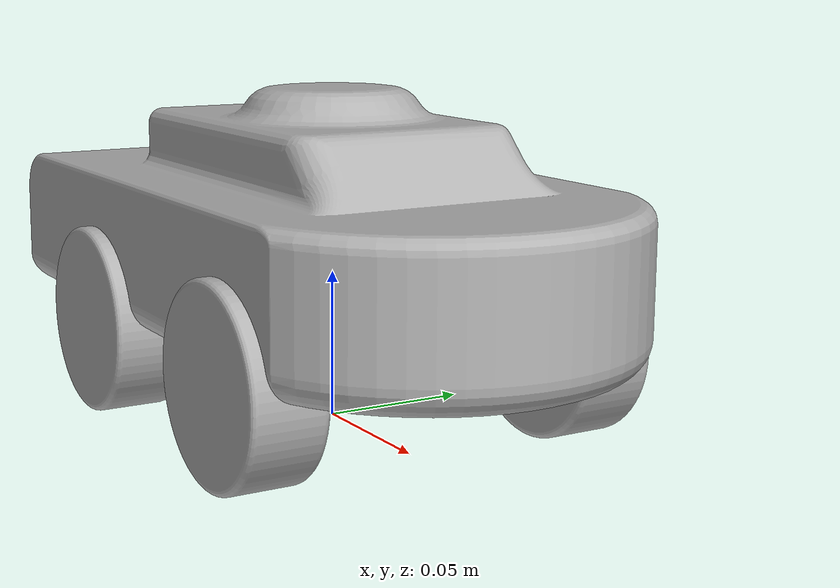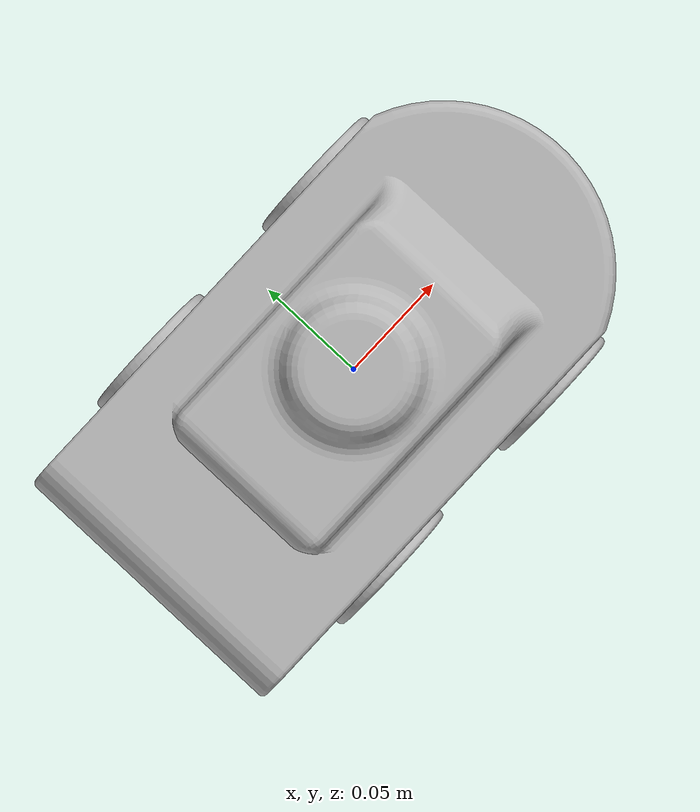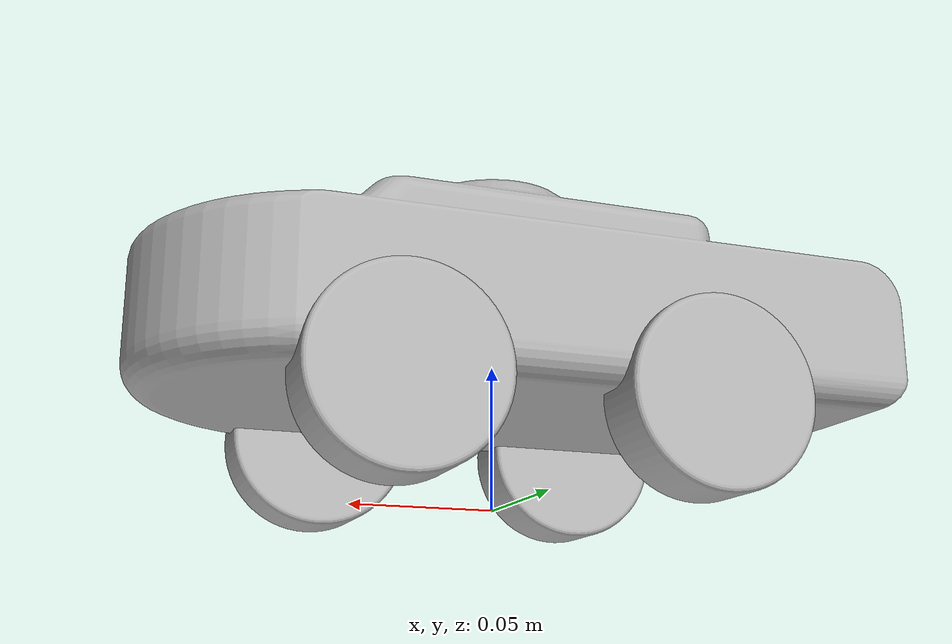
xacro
<?xml version="1.0" ?>
<robot name="fourbot" xmlns:xacro="http://www.ros.org/wiki/xacro">

<xacro:include filename="$(find fourbot_description)/urdf/materials.xacro" />
<xacro:include filename="$(find fourbot_description)/urdf/fourbot.trans" />
<xacro:include filename="$(find fourbot_description)/urdf/fourbot.gazebo" />
<link name="base_link">
  <inertial>
    <origin rpy="0 0 0" xyz="-0.005057592282261094 -3.2309163218539863e-07 0.061862195611415975"/>
    <mass value="13.781699065884379"/>
    <inertia ixx="0.021398" ixy="0.0" ixz="-0.00016" iyy="0.063357" iyz="-0.0" izz="0.07558"/>
  </inertial>
  <visual>
    <origin rpy="0 0 0" xyz="0 0 0"/>
    <geometry>
      <mesh filename="package://fourbot_description/meshes/base_link.stl" scale="0.001 0.001 0.001"/>
    </geometry>
    <material name="silver"/>
  </visual>
  <collision>
    <origin rpy="0 0 0" xyz="0 0 0"/>
    <geometry>
      <mesh filename="package://fourbot_description/meshes/base_link.stl" scale="0.001 0.001 0.001"/>
    </geometry>
  </collision>
</link>

<link name="wheel_rb_1">
  <inertial>
    <origin rpy="0 0 0" xyz="-0.030000220833374915 0.0075 -0.030000000000000006"/>
    <mass value="0.6286625778800742"/>
    <inertia ixx="0.000193" ixy="0.0" ixz="-0.0" iyy="0.000321" iyz="0.0" izz="0.000193"/>
  </inertial>
  <visual>
    <origin rpy="0 0 0" xyz="0.020702 0.065 -0.061"/>
    <geometry>
      <mesh filename="package://fourbot_description/meshes/wheel_rb_1.stl" scale="0.001 0.001 0.001"/>
    </geometry>
    <material name="silver"/>
  </visual>
  <collision>
    <origin rpy="0 0 0" xyz="0.020702 0.065 -0.061"/>
    <geometry>
      <mesh filename="package://fourbot_description/meshes/wheel_rb_1.stl" scale="0.001 0.001 0.001"/>
    </geometry>
  </collision>
</link>

<link name="wheel_rf_1">
  <inertial>
    <origin rpy="0 0 0" xyz="0.06999977916662509 0.007499999999999986 -0.030000000000000006"/>
    <mass value="0.6286625778800743"/>
    <inertia ixx="0.000193" ixy="-0.0" ixz="-0.0" iyy="0.000321" iyz="-0.0" izz="0.000193"/>
  </inertial>
  <visual>
    <origin rpy="0 0 0" xyz="0.020702 0.065 -0.061"/>
    <geometry>
      <mesh filename="package://fourbot_description/meshes/wheel_rf_1.stl" scale="0.001 0.001 0.001"/>
    </geometry>
    <material name="silver"/>
  </visual>
  <collision>
    <origin rpy="0 0 0" xyz="0.020702 0.065 -0.061"/>
    <geometry>
      <mesh filename="package://fourbot_description/meshes/wheel_rf_1.stl" scale="0.001 0.001 0.001"/>
    </geometry>
  </collision>
</link>

<link name="wheel_lb_1">
  <inertial>
    <origin rpy="0 0 0" xyz="-0.03199985439064852 -0.0075 -0.02999999999999999"/>
    <mass value="0.6286625778800742"/>
    <inertia ixx="0.000193" ixy="0.0" ixz="-0.0" iyy="0.000321" iyz="-0.0" izz="0.000193"/>
  </inertial>
  <visual>
    <origin rpy="0 0 0" xyz="0.020709 -0.065 -0.061"/>
    <geometry>
      <mesh filename="package://fourbot_description/meshes/wheel_lb_1.stl" scale="0.001 0.001 0.001"/>
    </geometry>
    <material name="silver"/>
  </visual>
  <collision>
    <origin rpy="0 0 0" xyz="0.020709 -0.065 -0.061"/>
    <geometry>
      <mesh filename="package://fourbot_description/meshes/wheel_lb_1.stl" scale="0.001 0.001 0.001"/>
    </geometry>
  </collision>
</link>

<link name="wheel_lf_1">
  <inertial>
    <origin rpy="0 0 0" xyz="0.07000014560765941 -0.0075000000003965575 -0.030000000000011354"/>
    <mass value="0.6286625778468293"/>
    <inertia ixx="0.000193" ixy="0.0" ixz="0.0" iyy="0.000321" iyz="0.0" izz="0.000193"/>
  </inertial>
  <visual>
    <origin rpy="0 0 0" xyz="0.020709 -0.065 -0.061"/>
    <geometry>
      <mesh filename="package://fourbot_description/meshes/wheel_lf_1.stl" scale="0.001 0.001 0.001"/>
    </geometry>
    <material name="silver"/>
  </visual>
  <collision>
    <origin rpy="0 0 0" xyz="0.020709 -0.065 -0.061"/>
    <geometry>
      <mesh filename="package://fourbot_description/meshes/wheel_lf_1.stl" scale="0.001 0.001 0.001"/>
    </geometry>
  </collision>
</link>

<joint name="Rev1" type="continuous">
  <origin rpy="0 0 0" xyz="-0.020702 -0.065 0.061"/>
  <parent link="base_link"/>
  <child link="wheel_rb_1"/>
  <axis xyz="0.0 -1.0 0.0"/>
</joint>

<joint name="Rev2" type="continuous">
  <origin rpy="0 0 0" xyz="-0.020702 -0.065 0.061"/>
  <parent link="base_link"/>
  <child link="wheel_rf_1"/>
  <axis xyz="0.0 -1.0 0.0"/>
</joint>

<joint name="Rev3" type="continuous">
  <origin rpy="0 0 0" xyz="-0.020709 0.065 0.061"/>
  <parent link="base_link"/>
  <child link="wheel_lb_1"/>
  <axis xyz="0.0 1.0 0.0"/>
</joint>

<joint name="Rev4" type="continuous">
  <origin rpy="0 0 0" xyz="-0.020709 0.065 0.061"/>
  <parent link="base_link"/>
  <child link="wheel_lf_1"/>
  <axis xyz="0.0 1.0 0.0"/>
</joint>

</robot>

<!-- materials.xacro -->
<robot name="fourbot" xmlns:xacro="http://www.ros.org/wiki/xacro" >

<material name="silver">
  <color rgba="0.700 0.700 0.700 1.000"/>
</material>

</robot>

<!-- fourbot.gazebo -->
<robot name="fourbot" xmlns:xacro="http://www.ros.org/wiki/xacro" >

<xacro:property name="body_color" value="Gazebo/Silver" />

<gazebo>
  <plugin filename="libgazebo_ros_control.so" name="control"/>
</gazebo>
<gazebo reference="base_link">
  <material>${body_color}</material>
  <mu1>0.2</mu1>
  <mu2>0.2</mu2>
  <selfCollide>true</selfCollide>
  <gravity>true</gravity>
</gazebo>

<gazebo reference="wheel_rb_1">
  <material>${body_color}</material>
  <mu1>0.2</mu1>
  <mu2>0.2</mu2>
  <selfCollide>true</selfCollide>
</gazebo>

<gazebo reference="wheel_rf_1">
  <material>${body_color}</material>
  <mu1>0.2</mu1>
  <mu2>0.2</mu2>
  <selfCollide>true</selfCollide>
</gazebo>

<gazebo reference="wheel_lb_1">
  <material>${body_color}</material>
  <mu1>0.2</mu1>
  <mu2>0.2</mu2>
  <selfCollide>true</selfCollide>
</gazebo>

<gazebo reference="wheel_lf_1">
  <material>${body_color}</material>
  <mu1>0.2</mu1>
  <mu2>0.2</mu2>
  <selfCollide>true</selfCollide>
</gazebo>

</robot>
